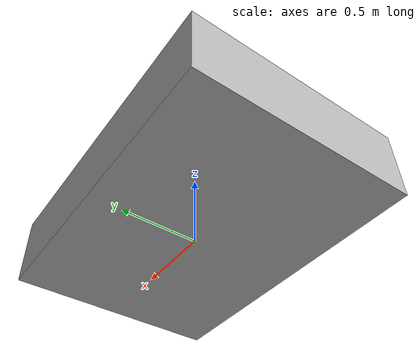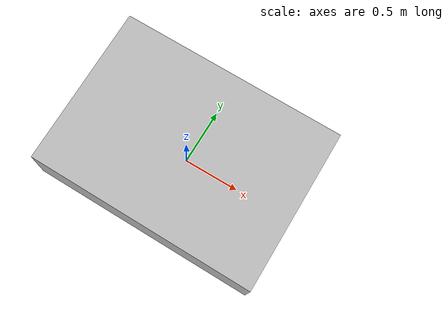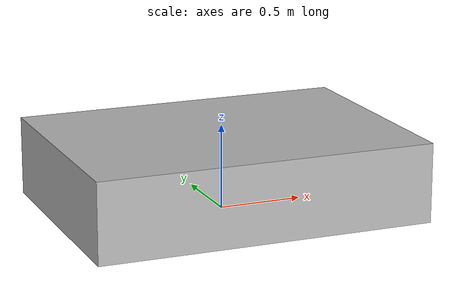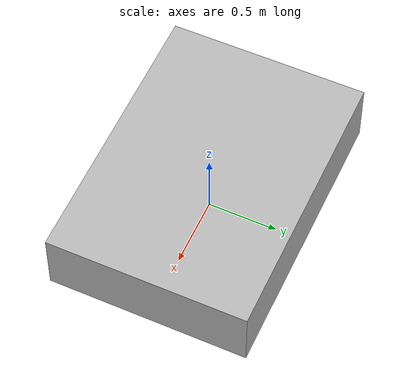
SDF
<?xml version="1.0"?>
<sdf version="1.6">
  <model name="reo2016/bed">
    <link name="1_link">
      <collision name="1_col">
        <geometry>
          <box>
            <size>2.0 1.435 0.47</size>
          </box>
        </geometry>
      </collision>
      <visual name="1_vis">
        <geometry>
          <box>
            <size>2.0 1.435 0.47</size>
          </box>
        </geometry>
      </visual>
      <pose>0.0 0.0 0.235 0 0 0</pose>
    </link>
    <link name="on_top_of">
      <virtual_volume name="on_top_of_vv">
        <geometry>
          <box>
            <size>2.0 1.42 0.21</size>
          </box>
        </geometry>
        <pose>0.0 0.0 0.615 0 0 0</pose>
      </virtual_volume>
    </link>
    <link name="in_front_of">
      <virtual_volume name="in_front_of_vv">
        <geometry>
          <box>
            <size>0.2 1.42 0.01</size>
          </box>
        </geometry>
        <pose>-1.7 0.0 0.005 0 0 0</pose>
      </virtual_volume>
    </link>
    <static>true</static>
  </model>
</sdf>
